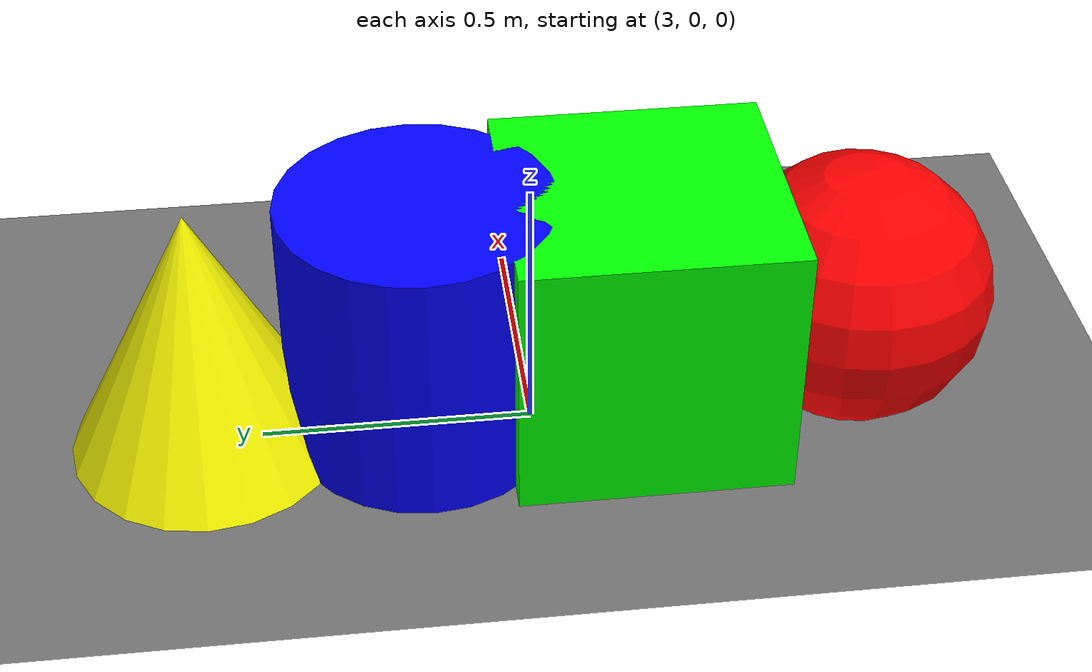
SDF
<?xml version="1.0" ?>
<sdf version="1.6">
  <world name="c4_geometries">
    <scene>
      <ambient>0.7 0.7 0.7 1</ambient>
      <background>0.5 0.5 0.5 1</background>
    </scene>

    <include>
      <uri>model://sun</uri>
    </include>

    <model name="ground_plane_c4">
      <static>true</static>
      <link name="link">
        <collision name="collision">
          <geometry>
            <plane>
              <normal>0 0 1</normal>
              <size>30 30</size>
            </plane>
          </geometry>
        </collision>
        <visual name="visual">
          <geometry>
            <plane>
              <normal>0 0 1</normal>
              <size>30 30</size>
            </plane>
          </geometry>
          <material>
            <ambient>0.45 0.45 0.45 1</ambient>
            <diffuse>0.45 0.45 0.45 1</diffuse>
          </material>
        </visual>
      </link>
    </model>

    <model name="c4_red_sphere">
      <pose>3.0 -0.6 0.25 0 0 0</pose>
      <static>true</static>
      <link name="link">
        <collision name="collision">
          <geometry>
            <sphere><radius>0.25</radius></sphere>
          </geometry>
        </collision>
        <visual name="visual">
          <geometry>
            <sphere><radius>0.25</radius></sphere>
          </geometry>
          <material>
            <ambient>1 0 0 1</ambient>
            <diffuse>1 0 0 1</diffuse>
          </material>
        </visual>
      </link>
    </model>

    <model name="c4_green_cube">
      <pose>3.0 -0.2 0.25 0 0 0</pose>
      <static>true</static>
      <link name="link">
        <collision name="collision">
          <geometry>
            <box><size>0.5 0.5 0.5</size></box>
          </geometry>
        </collision>
        <visual name="visual">
          <geometry>
            <box><size>0.5 0.5 0.5</size></box>
          </geometry>
          <material>
            <ambient>0 1 0 1</ambient>
            <diffuse>0 1 0 1</diffuse>
          </material>
        </visual>
      </link>
    </model>

    <model name="c4_blue_cylinder">
      <pose>3.0 0.2 0.25 0 0 0</pose>
      <static>true</static>
      <link name="link">
        <collision name="collision">
          <geometry>
            <cylinder>
              <radius>0.25</radius>
              <length>0.5</length>
            </cylinder>
          </geometry>
        </collision>
        <visual name="visual">
          <geometry>
            <cylinder>
              <radius>0.25</radius>
              <length>0.5</length>
            </cylinder>
          </geometry>
          <material>
            <ambient>0 0 1 1</ambient>
            <diffuse>0 0 1 1</diffuse>
          </material>
        </visual>
      </link>
    </model>

    <model name="c4_yellow_cone">
      <pose>3.0 0.6 0.25 0 0 0</pose>
      <static>true</static>
      <link name="link">
        <collision name="collision">
          <geometry>
            <cone>
              <radius>0.25</radius>
              <length>0.5</length>
            </cone>
          </geometry>
        </collision>
        <visual name="visual">
          <geometry>
            <cone>
              <radius>0.25</radius>
              <length>0.5</length>
            </cone>
          </geometry>
          <material>
            <ambient>1 1 0 1</ambient>
            <diffuse>1 1 0 1</diffuse>
          </material>
        </visual>
      </link>
    </model>
  </world>
</sdf>
